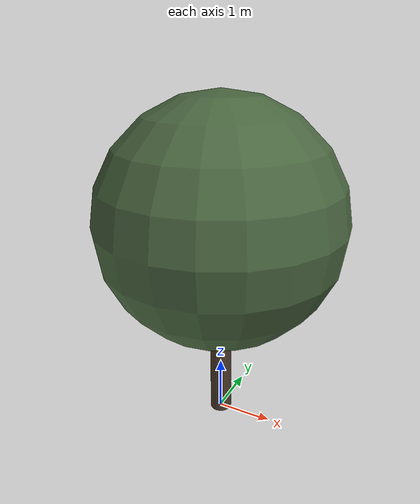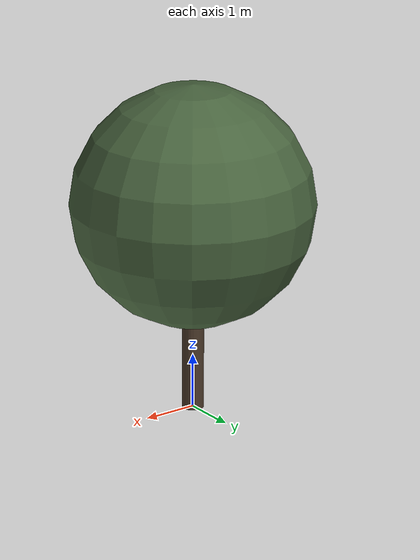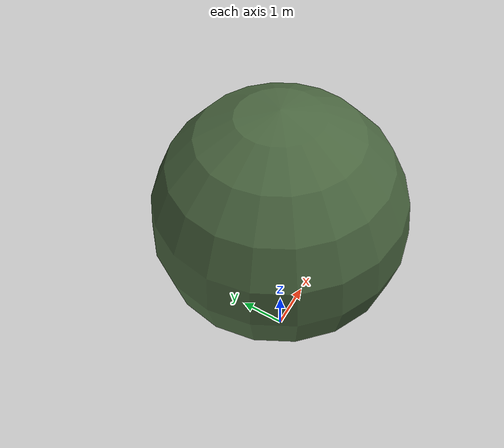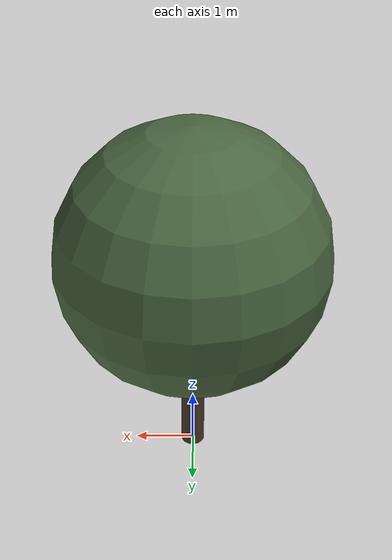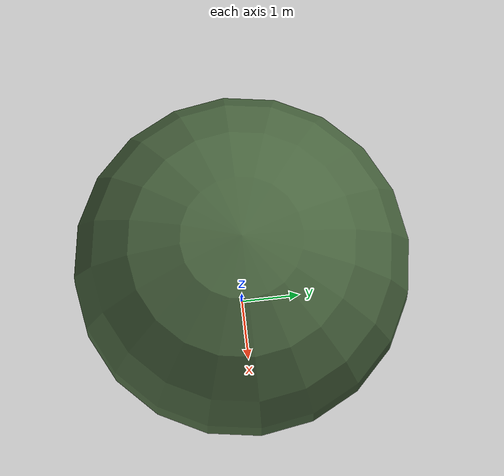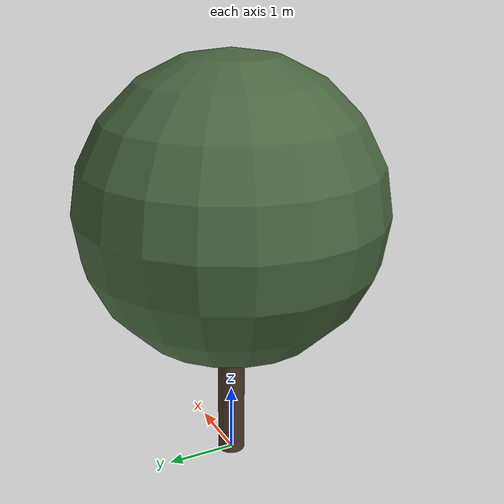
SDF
<?xml version="1.0" ?>
<sdf version="1.10">
  <model name="chene_vert_21">
    <static>true</static>

    <!-- Tronc -->
    <link name="trunk">
      <pose>0 0 1.5870321958148232 0 0 0</pose>
      <visual name="trunk_visual">
        <geometry>
          <cylinder>
            <radius>0.19714142833075904</radius>
            <length>3.1740643916296465</length>
          </cylinder>
        </geometry>
        <material>
          <ambient>0.29 0.22 0.16 1</ambient>
          <diffuse>0.29 0.22 0.16 1</diffuse>
          <specular>0.1 0.1 0.1 1</specular>
        </material>
      </visual>
      <collision name="trunk_collision">
        <geometry>
          <cylinder>
            <radius>0.19714142833075904</radius>
            <length>3.1740643916296465</length>
          </cylinder>
        </geometry>
      </collision>
    </link>

    <!-- Feuillage -->
    <link name="crown">
      <pose>0 0 3.8331809884643686 0 0 0</pose>
      <visual name="crown_visual">
        <geometry>
          <sphere>
              <radius>2.1970553227824077</radius>
            </sphere>
        </geometry>
        <material>
          <ambient>0.29 0.40 0.25 1</ambient>
          <diffuse>0.29 0.40 0.25 1</diffuse>
          <specular>0.1 0.1 0.1 1</specular>
        </material>
      </visual>
      <collision name="crown_collision">
        <geometry>
          <sphere>
            <radius>1.7576442582259262</radius>
          </sphere>
        </geometry>
      </collision>
    </link>

    <!-- Joint tronc-feuillage -->
    <joint name="trunk_crown_joint" type="fixed">
      <parent>trunk</parent>
      <child>crown</child>
    </joint>

  </model>
</sdf>
